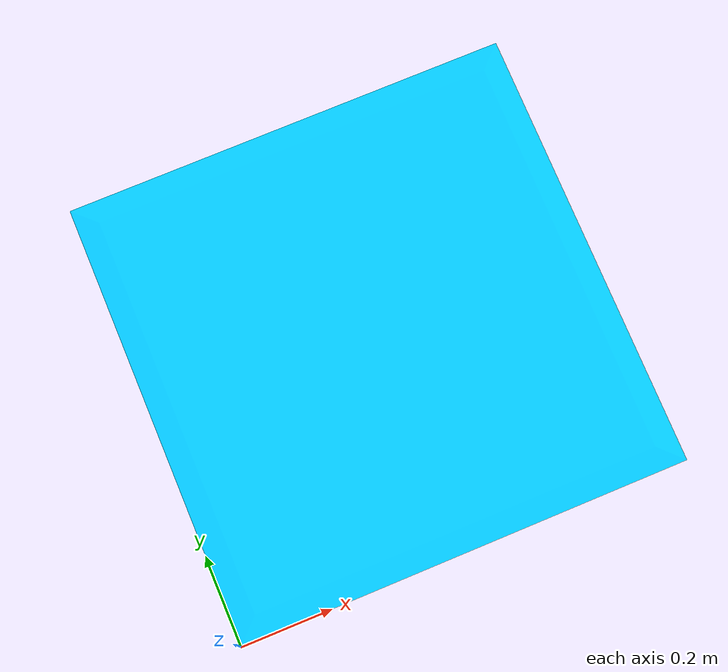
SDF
<?xml version="1.0" encoding="UTF-8"?>
<sdf version="1.4">
   <model name="Task">
      <static>true</static>
      <link name="chassis">
         <pose>0 0 0 0 0 0</pose>
         <inertial>
            <mass>31</mass>
            <pose>0 0 0 0 0 0</pose>
            <inertia>
               <ixx>100</ixx>
               <ixy>0</ixy>
               <ixz>0</ixz>
               <iyy>100</iyy>
               <iyz>0</iyz>
               <izz>2.86</izz>
            </inertia>
         </inertial>
         <collision name="collision">
            <pose>0 0 0 0 0 0</pose>
            <geometry>
               <mesh>
                  <scale>1 1 1</scale>
                  <uri>file://meshes/task.dae</uri>
               </mesh>
            </geometry>
            <surface>
               <bounce>
                  <restitution_coefficient>0</restitution_coefficient>
               </bounce>
               <friction>
                  <ode>
                     <mu>0.1</mu>
                     <mu2>0.1</mu2>
                  </ode>
               </friction>
            </surface>
         </collision>
         <visual name="visual">
            <pose>0 0 0 0 0 0</pose>
            <geometry>
               <mesh>
                  <scale>1 1 1</scale>
                  <uri>file://meshes/task.dae</uri>
               </mesh>
            </geometry>
         </visual>
         <velocity_decay>
            <linear>0</linear>
            <angular>0</angular>
         </velocity_decay>
         <self_collide>0</self_collide>
         <gravity>1</gravity>
      </link>
      <plugin name="task_gazebo" filename="libtask_gazebo.so" />
   </model>
</sdf>
